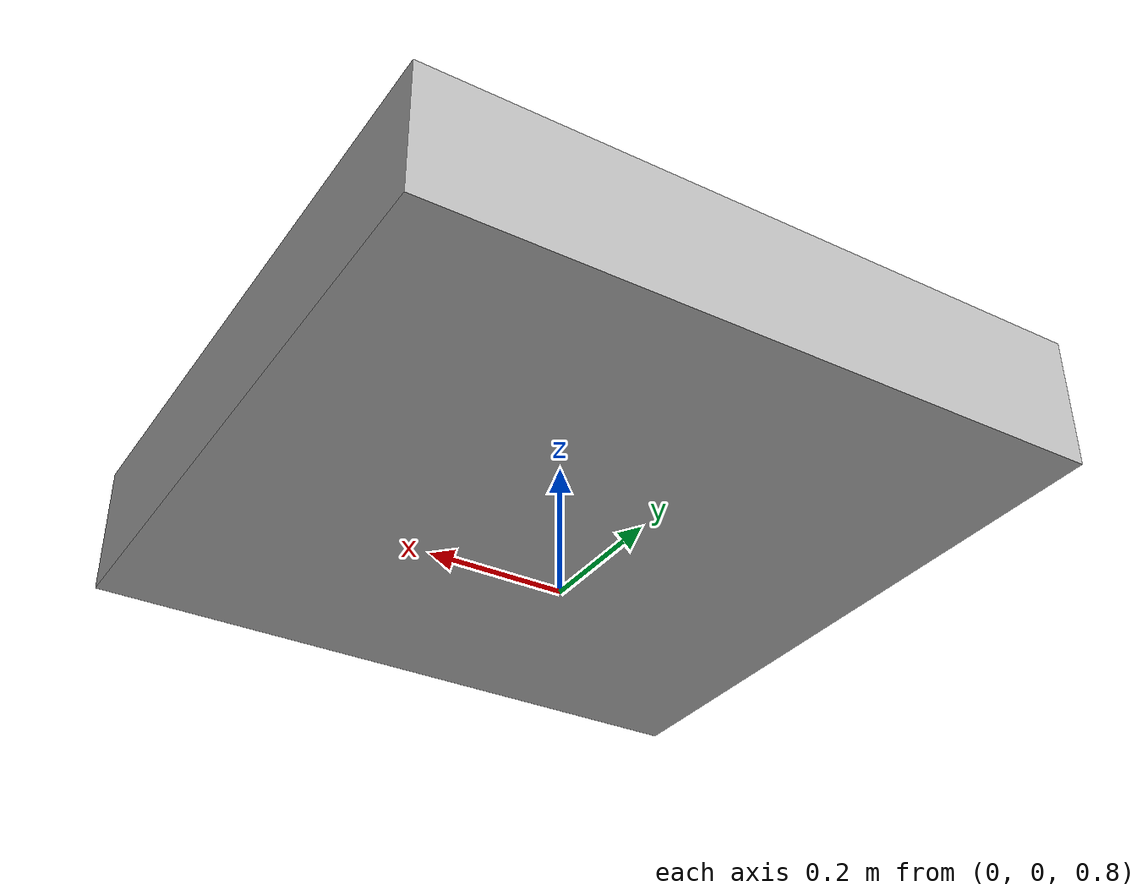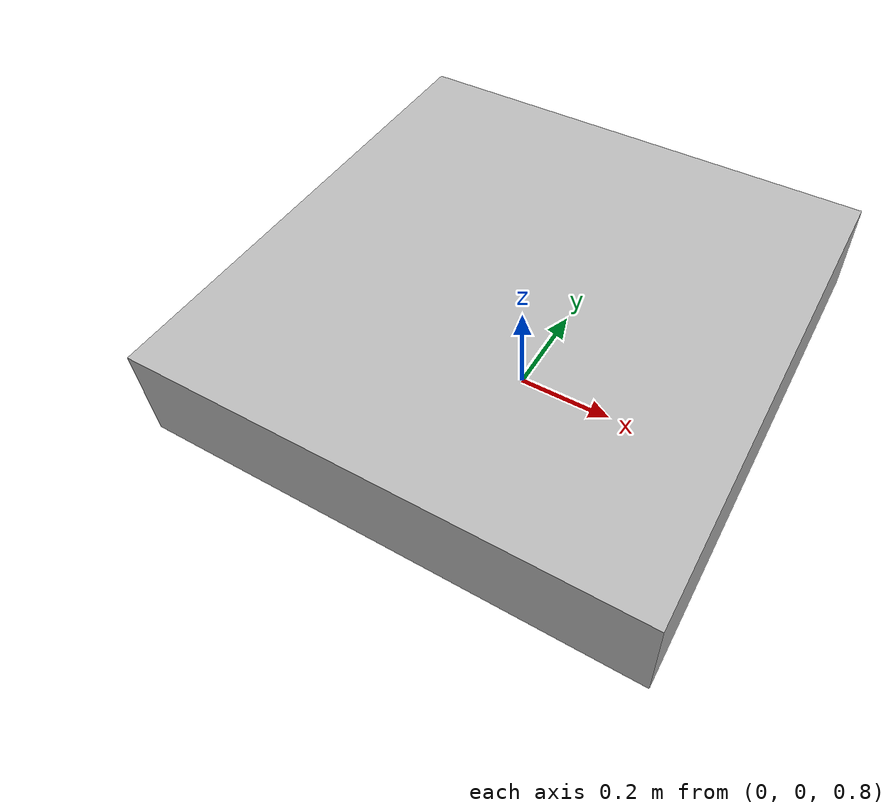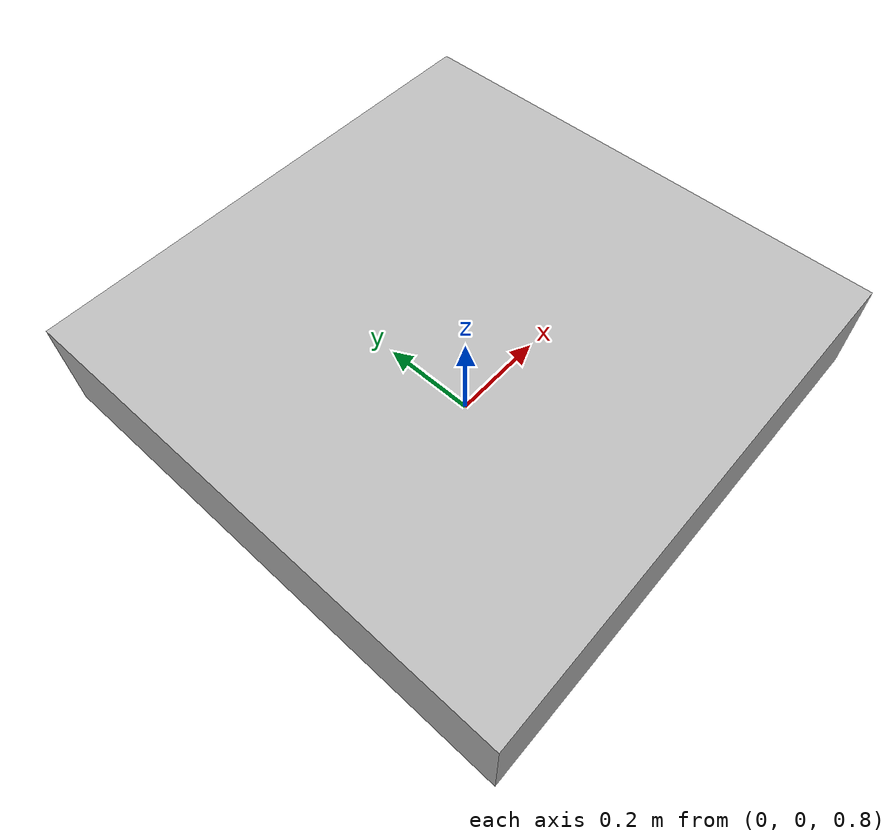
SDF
<?xml version="1.0" ?>
<sdf version="1.6">
  <model name="circular_pad">
    <pose>0 0 1 0 0 0</pose>
    <static>true</static>
    <link name="link">
      <collision name="collision">
        <geometry>
          <box>
            <size>0.5 0.5 0.1</size>
          </box>
        </geometry>
      </collision>

      <visual name="visual">
        <geometry>
          <mesh>
            <uri>model://circular_pad/meshes/mesh.dae</uri>
          </mesh>
        </geometry>
      </visual>
    </link>
  </model>
</sdf>
